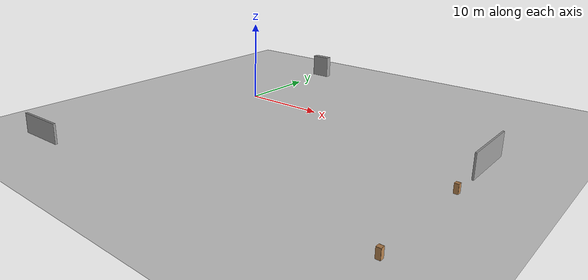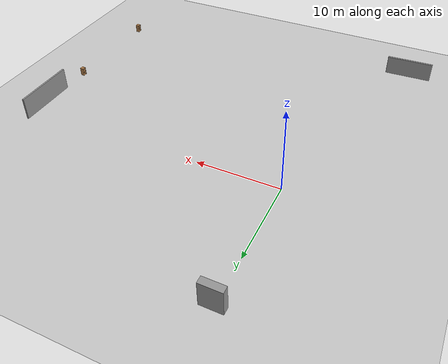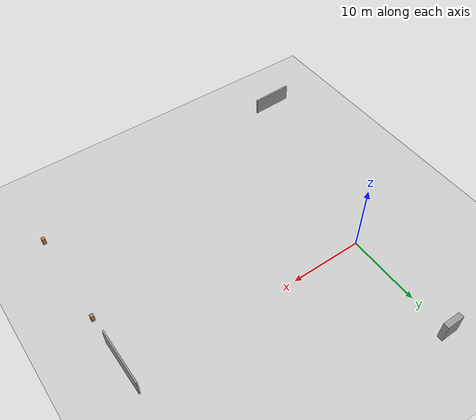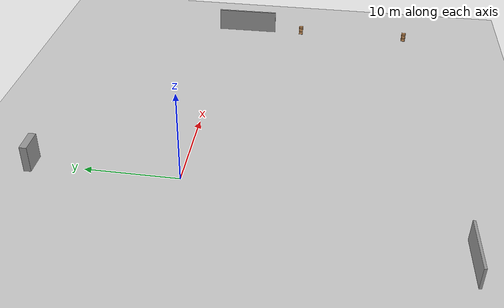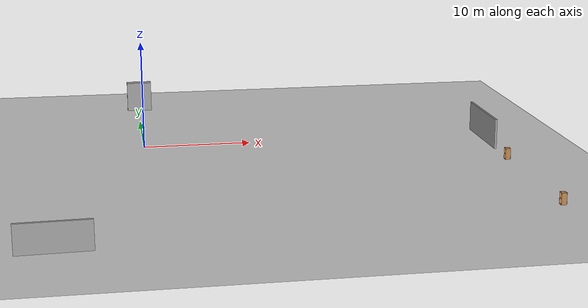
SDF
<sdf version="1.6">
 <world name="default">
  <light name="sun" type="directional">
   <pose>0 0 10 0 -0 0</pose>
   <diffuse>0.8 0.8 0.8 1</diffuse>
   <specular>0.2 0.2 0.2 1</specular>
   <attenuation>
    <range>1000</range>
    <constant>0.9</constant>
    <linear>0.01</linear>
    <quadratic>0.001</quadratic>
   </attenuation>
   <direction>-0.5 0.1 -0.9</direction>
  </light>
  <model name="ground_plane">
   <static>1</static>
   <link name="link">
    <collision name="collision">
     <geometry><plane><normal>0 0 1</normal><size>100 100</size></plane></geometry>
     <surface><friction><ode><mu>100</mu><mu2>50</mu2></ode></friction></surface>
    </collision>
    <visual name="visual">
     <cast_shadows>0</cast_shadows>
     <geometry><plane><normal>0 0 1</normal><size>100 100</size></plane></geometry>
     <material>
      <script><uri>file://media/materials/scripts/gazebo.material</uri><name>Gazebo/Grey</name></script>
     </material>
    </visual>
   </link>
  </model>
  <gravity>0 0 -9.8</gravity>
  <magnetic_field>6e-06 2.3e-05 -4.2e-05</magnetic_field>
  <atmosphere type="adiabatic"/>
  <physics name="default_physics" default="0" type="ode">
   <max_step_size>0.001</max_step_size>
   <real_time_factor>1</real_time_factor>
   <real_time_update_rate>1000</real_time_update_rate>
  </physics>
  <scene><ambient>0.4 0.4 0.4 1</ambient><background>0.7 0.7 0.7 1</background><shadows>1</shadows></scene>
  <audio><device>default</device></audio>
  <spherical_coordinates>
   <surface_model>EARTH_WGS84</surface_model>
   <latitude_deg>0</latitude_deg>
   <longitude_deg>0</longitude_deg>
   <elevation>0</elevation>
   <heading_deg>0</heading_deg>
  </spherical_coordinates>
  <model name="cabinet">
   <static>1</static>
   <link name="cabinet_bottom_plate">
    <inertial>
     <pose>0 0 -1 0 -0 0</pose>
     <inertia><ixx>2.05</ixx><ixy>0</ixy><ixz>0</ixz><iyy>2.05</iyy><iyz>0</iyz><izz>2.05</izz></inertia>
     <mass>25</mass>
    </inertial>
    <collision name="cabinet_bottom_plate_geom">
     <pose>0 0 0.01 0 -0 0</pose>
     <geometry><box><size>0.45 0.45 0.02</size></box></geometry>
    </collision>
    <visual name="cabinet_bottom_plate_geom_visual">
     <pose>0 0 0.01 0 -0 0</pose>
     <geometry><box><size>0.45 0.45 0.02</size></box></geometry>
     <material>
      <script><uri>file://media/materials/scripts/gazebo.material</uri><name>Gazebo/Wood</name></script>
     </material>
    </visual>
    <collision name="cabinet_bottom_plate_geom_cabinet_back_plate">
     <pose>0.235 0 0.51 0 -0 0</pose>
     <geometry><box><size>0.02 0.45 1.02</size></box></geometry>
    </collision>
    <visual name="cabinet_bottom_plate_geom_cabinet_back_plate_visual">
     <pose>0.235 0 0.51 0 -0 0</pose>
     <geometry><box><size>0.02 0.45 1.02</size></box></geometry>
     <material>
      <script><uri>file://media/materials/scripts/gazebo.material</uri><name>Gazebo/Wood</name></script>
     </material>
    </visual>
    <collision name="cabinet_bottom_plate_geom_cabinet_left_plate">
     <pose>0 0.235 0.51 0 -0 0</pose>
     <geometry><box><size>0.45 0.02 1.02</size></box></geometry>
    </collision>
    <visual name="cabinet_bottom_plate_geom_cabinet_left_plate_visual">
     <pose>0 0.235 0.51 0 -0 0</pose>
     <geometry><box><size>0.45 0.02 1.02</size></box></geometry>
     <material>
      <script><uri>file://media/materials/scripts/gazebo.material</uri><name>Gazebo/Wood</name></script>
     </material>
    </visual>
    <collision name="cabinet_bottom_plate_geom_cabinet_middle_plate">
     <pose>0 0 0.51 0 -0 0</pose>
     <geometry><box><size>0.45 0.45 0.02</size></box></geometry>
    </collision>
    <visual name="cabinet_bottom_plate_geom_cabinet_middle_plate_visual">
     <pose>0 0 0.51 0 -0 0</pose>
     <geometry><box><size>0.45 0.45 0.02</size></box></geometry>
     <material>
      <script><uri>file://media/materials/scripts/gazebo.material</uri><name>Gazebo/Wood</name></script>
     </material>
    </visual>
    <collision name="cabinet_bottom_plate_geom_cabinet_right_plate">
     <pose>0 -0.235 0.51 0 -0 0</pose>
     <geometry><box><size>0.45 0.02 1.02</size></box></geometry>
    </collision>
    <visual name="cabinet_bottom_plate_geom_cabinet_right_plate_visual">
     <pose>0 -0.235 0.51 0 -0 0</pose>
     <geometry><box><size>0.45 0.02 1.02</size></box></geometry>
     <material>
      <script><uri>file://media/materials/scripts/gazebo.material</uri><name>Gazebo/Wood</name></script>
     </material>
    </visual>
    <collision name="cabinet_bottom_plate_geom_cabinet_top_plate">
     <pose>0 0 1.01 0 -0 0</pose>
     <geometry><box><size>0.45 0.45 0.02</size></box></geometry>
    </collision>
    <visual name="cabinet_bottom_plate_geom_cabinet_top_plate_visual">
     <pose>0 0 1.01 0 -0 0</pose>
     <geometry><box><size>0.45 0.45 0.02</size></box></geometry>
     <material>
      <script><uri>file://media/materials/scripts/gazebo.material</uri><name>Gazebo/Wood</name></script>
     </material>
    </visual>
   </link>
   <pose>32.497 -9.46336 0 0 -0 0</pose>
  </model>
  <model name="grey_wall">
   <static>1</static>
   <link name="link">
    <pose>0 0 1.4 0 -0 0</pose>
    <collision name="collision"><geometry><box><size>7.5 0.2 2.8</size></box></geometry></collision>
    <visual name="visual">
     <cast_shadows>0</cast_shadows>
     <geometry><box><size>7.5 0.2 2.8</size></box></geometry>
     <material>
      <script>
       <uri>model://grey_wall/materials/scripts</uri>
       <uri>model://grey_wall/materials/textures</uri>
       <name>vrc/grey_wall</name>
      </script>
     </material>
    </visual>
   </link>
   <pose>32.5127 -2.18264 0 0 -0 1.58089</pose>
  </model>
  <model name="cabinet_clone">
   <static>1</static>
   <link name="cabinet_bottom_plate">
    <inertial>
     <pose>0 0 -1 0 -0 0</pose>
     <inertia><ixx>2.05</ixx><ixy>0</ixy><ixz>0</ixz><iyy>2.05</iyy><iyz>0</iyz><izz>2.05</izz></inertia>
     <mass>25</mass>
    </inertial>
    <collision name="cabinet_bottom_plate_geom">
     <pose>0 0 0.01 0 -0 0</pose>
     <geometry><box><size>0.45 0.45 0.02</size></box></geometry>
    </collision>
    <visual name="cabinet_bottom_plate_geom_visual">
     <pose>0 0 0.01 0 -0 0</pose>
     <geometry><box><size>0.45 0.45 0.02</size></box></geometry>
     <material>
      <script><uri>file://media/materials/scripts/gazebo.material</uri><name>Gazebo/Wood</name></script>
     </material>
    </visual>
    <collision name="cabinet_bottom_plate_geom_cabinet_back_plate">
     <pose>0.235 0 0.51 0 -0 0</pose>
     <geometry><box><size>0.02 0.45 1.02</size></box></geometry>
    </collision>
    <visual name="cabinet_bottom_plate_geom_cabinet_back_plate_visual">
     <pose>0.235 0 0.51 0 -0 0</pose>
     <geometry><box><size>0.02 0.45 1.02</size></box></geometry>
     <material>
      <script><uri>file://media/materials/scripts/gazebo.material</uri><name>Gazebo/Wood</name></script>
     </material>
    </visual>
    <collision name="cabinet_bottom_plate_geom_cabinet_left_plate">
     <pose>0 0.235 0.51 0 -0 0</pose>
     <geometry><box><size>0.45 0.02 1.02</size></box></geometry>
    </collision>
    <visual name="cabinet_bottom_plate_geom_cabinet_left_plate_visual">
     <pose>0 0.235 0.51 0 -0 0</pose>
     <geometry><box><size>0.45 0.02 1.02</size></box></geometry>
     <material>
      <script><uri>file://media/materials/scripts/gazebo.material</uri><name>Gazebo/Wood</name></script>
     </material>
    </visual>
    <collision name="cabinet_bottom_plate_geom_cabinet_middle_plate">
     <pose>0 0 0.51 0 -0 0</pose>
     <geometry><box><size>0.45 0.45 0.02</size></box></geometry>
    </collision>
    <visual name="cabinet_bottom_plate_geom_cabinet_middle_plate_visual">
     <pose>0 0 0.51 0 -0 0</pose>
     <geometry><box><size>0.45 0.45 0.02</size></box></geometry>
     <material>
      <script><uri>file://media/materials/scripts/gazebo.material</uri><name>Gazebo/Wood</name></script>
     </material>
    </visual>
    <collision name="cabinet_bottom_plate_geom_cabinet_right_plate">
     <pose>0 -0.235 0.51 0 -0 0</pose>
     <geometry><box><size>0.45 0.02 1.02</size></box></geometry>
    </collision>
    <visual name="cabinet_bottom_plate_geom_cabinet_right_plate_visual">
     <pose>0 -0.235 0.51 0 -0 0</pose>
     <geometry><box><size>0.45 0.02 1.02</size></box></geometry>
     <material>
      <script><uri>file://media/materials/scripts/gazebo.material</uri><name>Gazebo/Wood</name></script>
     </material>
    </visual>
    <collision name="cabinet_bottom_plate_geom_cabinet_top_plate">
     <pose>0 0 1.01 0 -0 0</pose>
     <geometry><box><size>0.45 0.45 0.02</size></box></geometry>
    </collision>
    <visual name="cabinet_bottom_plate_geom_cabinet_top_plate_visual">
     <pose>0 0 1.01 0 -0 0</pose>
     <geometry><box><size>0.45 0.45 0.02</size></box></geometry>
     <material>
      <script><uri>file://media/materials/scripts/gazebo.material</uri><name>Gazebo/Wood</name></script>
     </material>
    </visual>
   </link>
   <pose>32.5181 -23.0714 0 0 -0 0</pose>
  </model>
  <model name="unit_box">
   <pose>0.095835 15.5737 1.47953 -0 -1e-06 0.000558</pose>
   <link name="link">
    <inertial>
     <mass>1</mass>
     <inertia>
      <ixx>0.166667</ixx>
      <ixy>0</ixy>
      <ixz>0</ixz>
      <iyy>0.166667</iyy>
      <iyz>0</iyz>
      <izz>0.166667</izz>
     </inertia>
    </inertial>
    <collision name="collision"><geometry><box><size>2.48617 0.785858 2.95906</size></box></geometry></collision>
    <visual name="visual">
     <geometry><box><size>2.48617 0.785858 2.95906</size></box></geometry>
     <material>
      <script><name>Gazebo/Grey</name><uri>file://media/materials/scripts/gazebo.material</uri></script>
     </material>
    </visual>
   </link>
  </model>
  <model name="unit_box_0">
   <pose>-7.39194 -27.5989 1.18728 2.5e-05 0.000685 0.037079</pose>
   <link name="link">
    <inertial>
     <mass>1</mass>
     <inertia>
      <ixx>0.166667</ixx>
      <ixy>0</ixy>
      <ixz>0</ixz>
      <iyy>0.166667</iyy>
      <iyz>0</iyz>
      <izz>0.166667</izz>
     </inertia>
    </inertial>
    <collision name="collision"><geometry><box><size>5.74004 0.258958 2.37847</size></box></geometry></collision>
    <visual name="visual">
     <geometry><box><size>5.74004 0.258958 2.37847</size></box></geometry>
     <material>
      <script><name>Gazebo/Grey</name><uri>file://media/materials/scripts/gazebo.material</uri></script>
     </material>
    </visual>
   </link>
  </model>
 </world>
</sdf>
